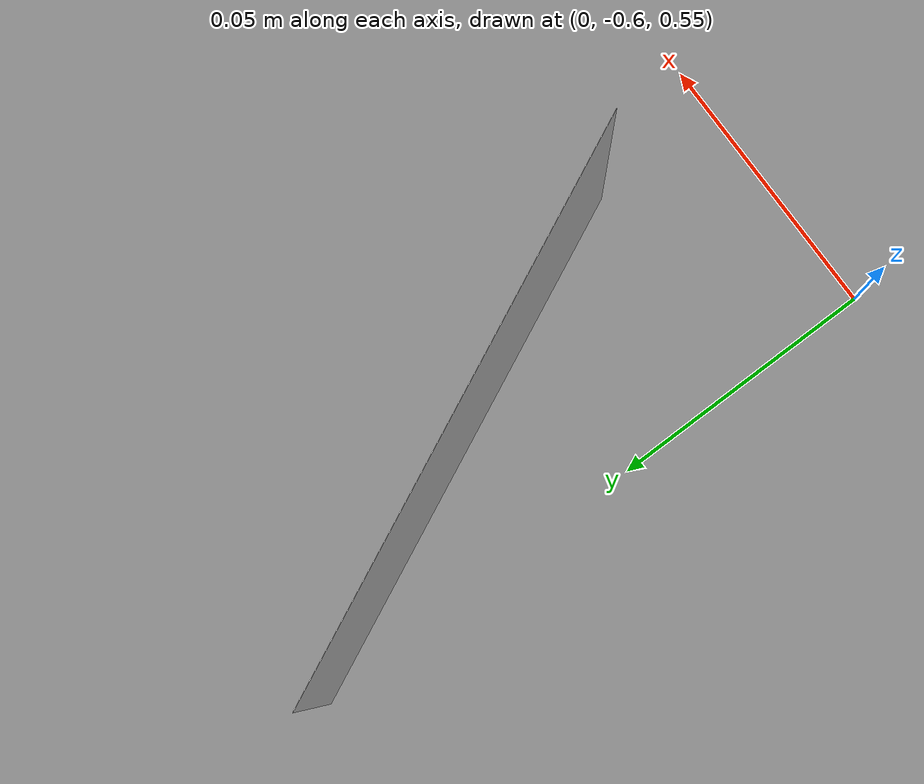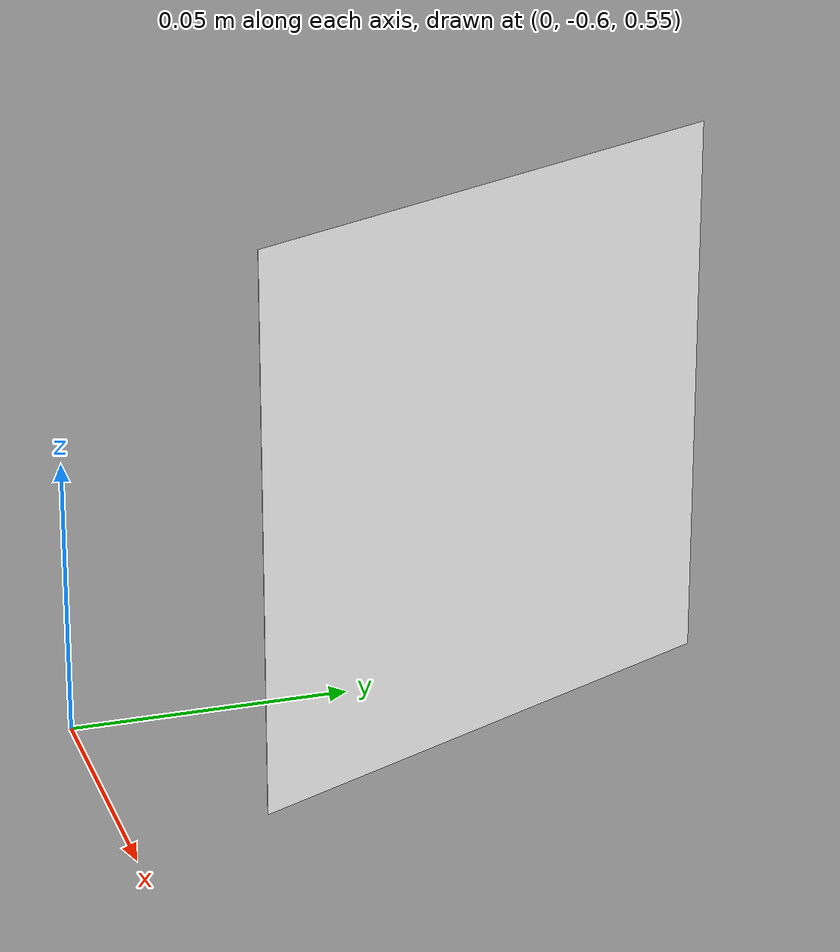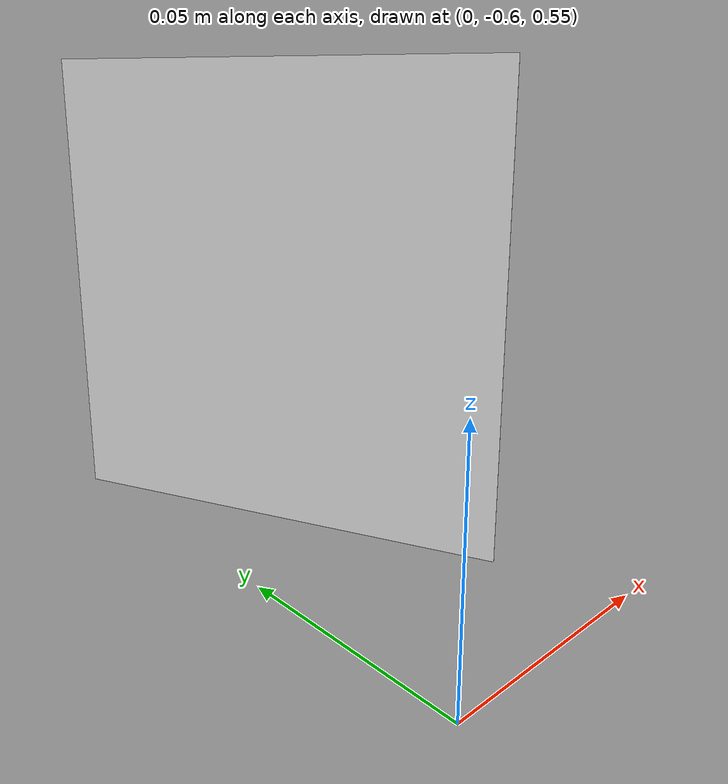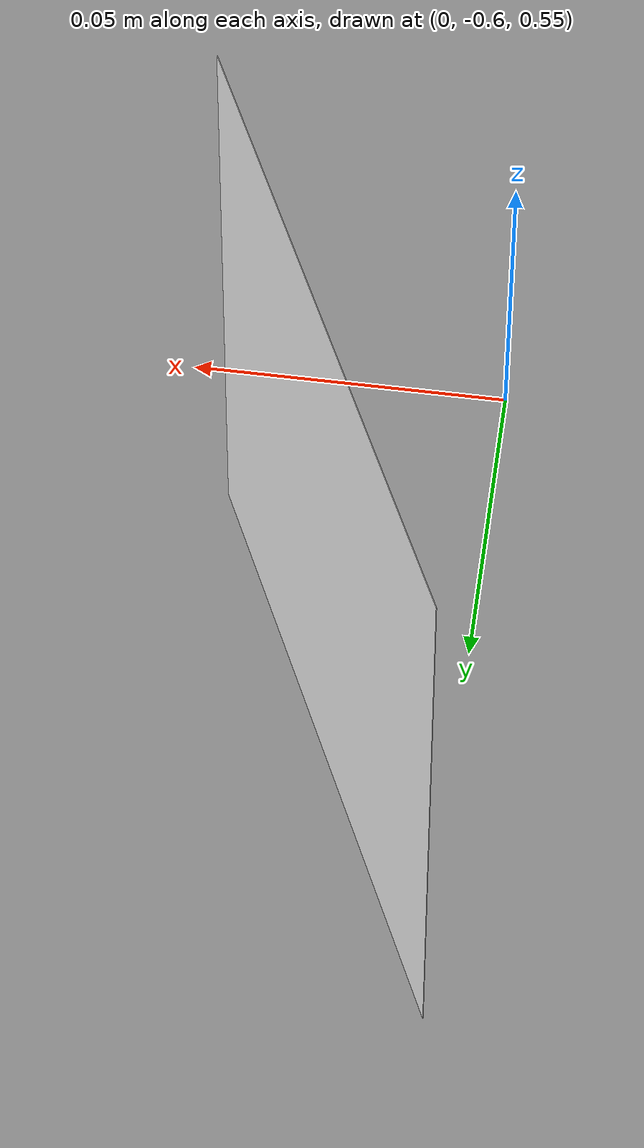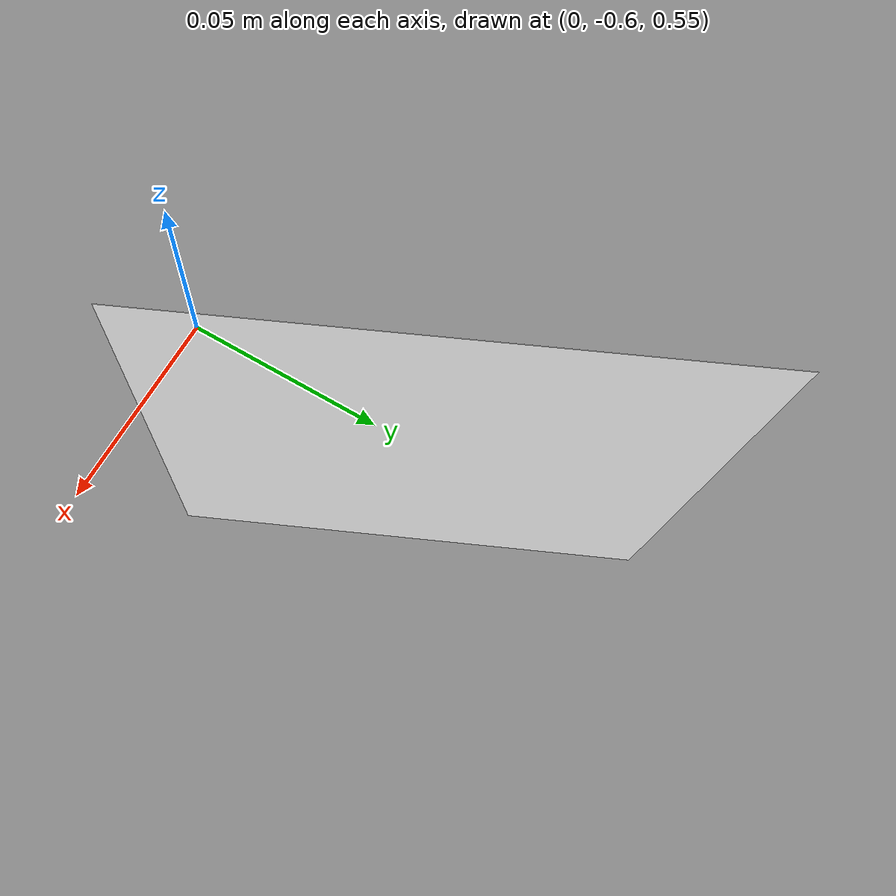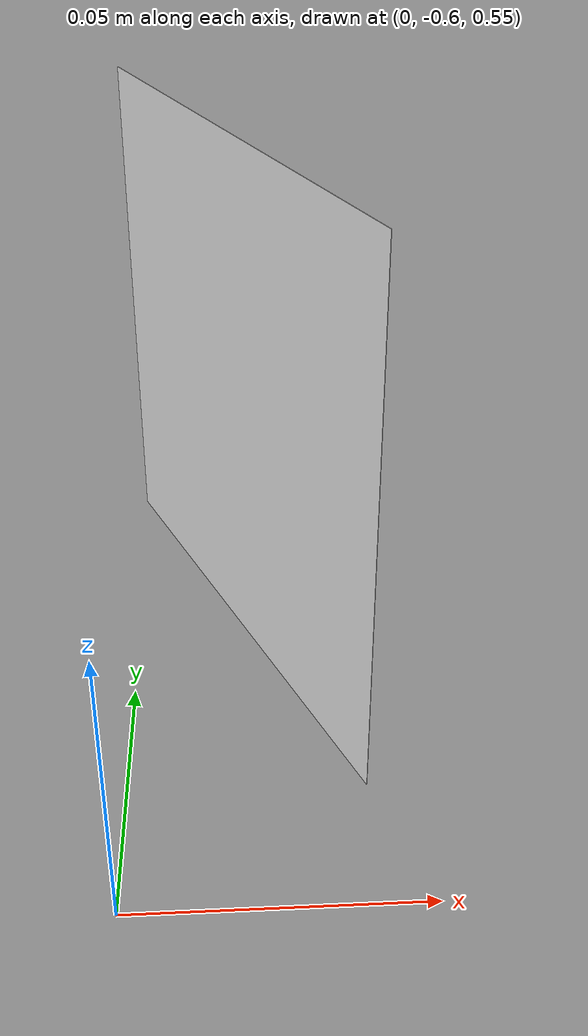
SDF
<?xml version="1.0" ?>
<sdf version="1.4">
  <!-- We use a custom world for the rrbot so that the camera angle is launched correctly -->

  <world name="default">
    <!-- Included light -->
    <include>
      <uri>https://fuel.gazebosim.org/1.0/OpenRobotics/models/Sun</uri>
    </include>

    <!-- Included model -->
    <include>
      <uri>https://fuel.gazebosim.org/1.0/OpenRobotics/models/Ground Plane</uri>
    </include>

    <include>
      <uri>
        file:///home/user/ros2_ws/src/ros2_iiwa/iiwa_description/gazebo/models/arucotag
      </uri>
      <name>arucotag</name>
      <pose>0.02 -0.53 0.6 -2.71 -1.57 0</pose>
    </include>

    <gravity>0 0 0</gravity>

    <!-- Focus camera on tall pendulum -->
    <gui fullscreen='0'>
      <camera name='user_camera'>
        <pose>4.927360 -4.376610 3.740080 0.000000 0.275643 2.356190</pose>
        <view_controller>orbit</view_controller>
      </camera>
    </gui>

    <!-- World control -->

  </world>
</sdf>

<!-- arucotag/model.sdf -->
<sdf version='1.9'>
  <model name='arucotag'>
    <static>true</static>
    <pose>0 0 0.001 0 0 0</pose>
    <link name='base'>
      <visual name='base_visual'>
        <geometry>
          <plane>
            <normal>0 0 1</normal>
            <size>0.1 0.1</size>
          </plane>
        </geometry>
        <material>
          <diffuse>1 1 1 1</diffuse>
          <specular>0.4 0.4 0.4 1</specular>
          <pbr>
            <metal>
              <albedo_map>model://aruco-201.png</albedo_map>
            </metal>
          </pbr>
        </material>
      </visual>
    </link>
  </model>
</sdf>
